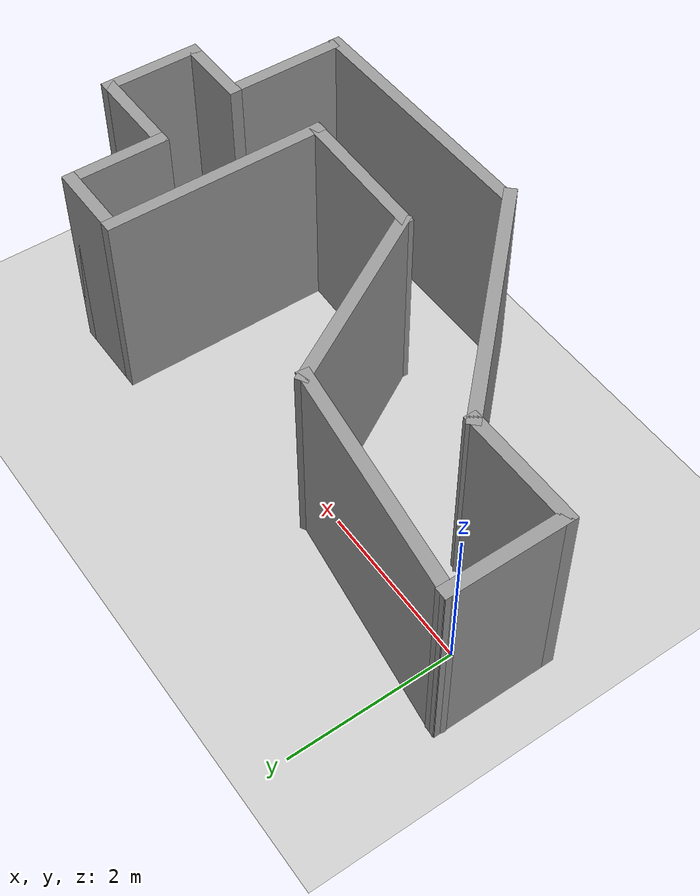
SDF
<sdf version="1.6">
 <world name="default">
  <light name="sun" type="directional">
   <pose>0 0 10 0 -0 0</pose>
   <diffuse>0.8 0.8 0.8 1</diffuse>
   <specular>0.2 0.2 0.2 1</specular>
   <attenuation>
    <range>1000</range>
    <constant>0.9</constant>
    <linear>0.01</linear>
    <quadratic>0.001</quadratic>
   </attenuation>
   <direction>-0.5 0.1 -0.9</direction>
  </light>
  <model name="ground_plane">
   <static>1</static>
   <link name="link">
    <collision name="collision">
     <geometry><plane><normal>0 0 1</normal><size>100 100</size></plane></geometry>
     <surface>
      <contact><collide_bitmask>65535</collide_bitmask></contact>
      <friction><ode><mu>100</mu><mu2>50</mu2></ode></friction>
     </surface>
    </collision>
    <visual name="visual">
     <cast_shadows>0</cast_shadows>
     <geometry><plane><normal>0 0 1</normal><size>100 100</size></plane></geometry>
     <material>
      <script><uri>file://media/materials/scripts/gazebo.material</uri><name>Gazebo/Grey</name></script>
     </material>
    </visual>
   </link>
  </model>
  <gravity>0 0 -9.8</gravity>
  <magnetic_field>6e-06 2.3e-05 -4.2e-05</magnetic_field>
  <atmosphere type="adiabatic"/>
  <physics name="default_physics" default="0" type="ode">
   <max_step_size>0.001</max_step_size>
   <real_time_factor>1</real_time_factor>
   <real_time_update_rate>1000</real_time_update_rate>
  </physics>
  <scene><ambient>0.4 0.4 0.4 1</ambient><background>0.7 0.7 0.7 1</background><shadows>1</shadows></scene>
  <spherical_coordinates>
   <surface_model>EARTH_WGS84</surface_model>
   <latitude_deg>0</latitude_deg>
   <longitude_deg>0</longitude_deg>
   <elevation>0</elevation>
   <heading_deg>0</heading_deg>
  </spherical_coordinates>
  <model name="irregular-3">
   <pose>3.19921 -1.0846 0 0 -0 0</pose>
   <link name="Wall_16">
    <collision name="Wall_16_Collision">
     <geometry><box><size>3.25 0.15 2.5</size></box></geometry>
     <pose>0 0 1.25 0 -0 0</pose>
    </collision>
    <visual name="Wall_16_Visual">
     <pose>0 0 1.25 0 -0 0</pose>
     <geometry><box><size>3.25 0.15 2.5</size></box></geometry>
     <material>
      <script><uri>file://media/materials/scripts/gazebo.material</uri><name>Gazebo/Grey</name></script>
      <ambient>1 1 1 1</ambient>
     </material>
     <meta><layer>0</layer></meta>
    </visual>
    <pose>1.3709 -1.77765 0 0 -0 0</pose>
   </link>
   <link name="Wall_18">
    <collision name="Wall_18_Collision">
     <geometry><box><size>3.25 0.15 2.5</size></box></geometry>
     <pose>0 0 1.25 0 -0 0</pose>
    </collision>
    <visual name="Wall_18_Visual">
     <pose>0 0 1.25 0 -0 0</pose>
     <geometry><box><size>3.25 0.15 2.5</size></box></geometry>
     <material>
      <script><uri>file://media/materials/scripts/gazebo.material</uri><name>Gazebo/Grey</name></script>
      <ambient>1 1 1 1</ambient>
     </material>
     <meta><layer>0</layer></meta>
    </visual>
    <pose>-1.30961 -0.734832 0 0 -0 2.35619</pose>
   </link>
   <link name="Wall_19">
    <collision name="Wall_19_Collision">
     <geometry><box><size>1.5 0.15 2.5</size></box></geometry>
     <pose>0 0 1.25 0 -0 0</pose>
    </collision>
    <visual name="Wall_19_Visual">
     <pose>0 0 1.25 0 -0 0</pose>
     <geometry><box><size>1.5 0.15 2.5</size></box></geometry>
     <material>
      <script><uri>file://media/materials/scripts/gazebo.material</uri><name>Gazebo/Grey</name></script>
      <ambient>1 1 1 1</ambient>
     </material>
     <meta><layer>0</layer></meta>
    </visual>
    <pose>-3.08063 0.361184 0 0 -0 3.14159</pose>
   </link>
   <link name="Wall_20">
    <collision name="Wall_20_Collision">
     <geometry><box><size>1.5 0.15 2.5</size></box></geometry>
     <pose>0 0 1.25 0 -0 0</pose>
    </collision>
    <visual name="Wall_20_Visual">
     <pose>0 0 1.25 0 -0 0</pose>
     <geometry><box><size>1.5 0.15 2.5</size></box></geometry>
     <material>
      <script><uri>file://media/materials/scripts/gazebo.material</uri><name>Gazebo/Grey</name></script>
      <ambient>1 1 1 1</ambient>
     </material>
     <meta><layer>0</layer></meta>
    </visual>
    <pose>-3.75563 1.03618 0 0 -0 1.5708</pose>
   </link>
   <link name="Wall_21">
    <collision name="Wall_21_Collision">
     <geometry><box><size>2.87744 0.15 2.5</size></box></geometry>
     <pose>0 0 1.25 0 -0 0</pose>
    </collision>
    <visual name="Wall_21_Visual">
     <pose>0 0 1.25 0 -0 0</pose>
     <geometry><box><size>2.87744 0.15 2.5</size></box></geometry>
     <material>
      <script><uri>file://media/materials/scripts/gazebo.material</uri><name>Gazebo/Grey</name></script>
      <ambient>1 1 1 1</ambient>
     </material>
     <meta><layer>0</layer></meta>
    </visual>
    <pose>-2.40378 1.53163 0 0 0 -0.132046</pose>
   </link>
   <link name="Wall_22">
    <collision name="Wall_22_Collision">
     <geometry><box><size>2.5 0.15 2.5</size></box></geometry>
     <pose>0 0 1.25 0 -0 0</pose>
    </collision>
    <visual name="Wall_22_Visual">
     <pose>0 0 1.25 0 -0 0</pose>
     <geometry><box><size>2.5 0.15 2.5</size></box></geometry>
     <material>
      <script><uri>file://media/materials/scripts/gazebo.material</uri><name>Gazebo/Grey</name></script>
      <ambient>1 1 1 1</ambient>
     </material>
     <meta><layer>0</layer></meta>
    </visual>
    <pose>-0.464431 0.347801 0 0 0 -1.0472</pose>
   </link>
   <link name="Wall_23">
    <collision name="Wall_23_Collision">
     <geometry><box><size>1.84268 0.15 2.5</size></box></geometry>
     <pose>0 0 1.25 0 -0 0</pose>
    </collision>
    <visual name="Wall_23_Visual">
     <pose>0 0 1.25 0 -0 0</pose>
     <geometry><box><size>1.84268 0.15 2.5</size></box></geometry>
     <material>
      <script><uri>file://media/materials/scripts/gazebo.material</uri><name>Gazebo/Grey</name></script>
      <ambient>1 1 1 1</ambient>
     </material>
     <meta><layer>0</layer></meta>
    </visual>
    <pose>0.968961 -0.710583 0 0 0 -0.032503</pose>
   </link>
   <link name="Wall_24">
    <collision name="Wall_24_Collision">
     <geometry><box><size>2.75 0.15 2.5</size></box></geometry>
     <pose>0 0 1.25 0 -0 0</pose>
    </collision>
    <visual name="Wall_24_Visual">
     <pose>0 0 1.25 0 -0 0</pose>
     <geometry><box><size>2.75 0.15 2.5</size></box></geometry>
     <material>
      <script><uri>file://media/materials/scripts/gazebo.material</uri><name>Gazebo/Grey</name></script>
      <ambient>1 1 1 1</ambient>
     </material>
     <meta><layer>0</layer></meta>
    </visual>
    <pose>1.81485 0.561914 0 0 -0 1.5708</pose>
   </link>
   <link name="Wall_25">
    <collision name="Wall_25_Collision">
     <geometry><box><size>1 0.15 2.5</size></box></geometry>
     <pose>0 0 1.25 0 -0 0</pose>
    </collision>
    <visual name="Wall_25_Visual">
     <pose>0 0 1.25 0 -0 0</pose>
     <geometry><box><size>1 0.15 2.5</size></box></geometry>
     <material>
      <script><uri>file://media/materials/scripts/gazebo.material</uri><name>Gazebo/Grey</name></script>
      <ambient>1 1 1 1</ambient>
     </material>
     <meta><layer>0</layer></meta>
    </visual>
    <pose>2.23985 1.86191 0 0 -0 0</pose>
   </link>
   <link name="Wall_26">
    <collision name="Wall_26_Collision">
     <geometry><box><size>1.25 0.15 2.5</size></box></geometry>
     <pose>0 0 1.25 0 -0 0</pose>
    </collision>
    <visual name="Wall_26_Visual">
     <pose>0 0 1.25 0 -0 0</pose>
     <geometry><box><size>1.25 0.15 2.5</size></box></geometry>
     <material>
      <script><uri>file://media/materials/scripts/gazebo.material</uri><name>Gazebo/Grey</name></script>
      <ambient>1 1 1 1</ambient>
     </material>
     <meta><layer>0</layer></meta>
    </visual>
    <pose>2.66485 1.31191 0 0 0 -1.5708</pose>
   </link>
   <link name="Wall_27">
    <collision name="Wall_27_Collision">
     <geometry><box><size>1.25 0.15 2.5</size></box></geometry>
     <pose>0 0 1.25 0 -0 0</pose>
    </collision>
    <visual name="Wall_27_Visual">
     <pose>0 0 1.25 0 -0 0</pose>
     <geometry><box><size>1.25 0.15 2.5</size></box></geometry>
     <material>
      <script><uri>file://media/materials/scripts/gazebo.material</uri><name>Gazebo/Grey</name></script>
      <ambient>1 1 1 1</ambient>
     </material>
     <meta><layer>0</layer></meta>
    </visual>
    <pose>3.21485 0.761913 0 0 -0 0</pose>
   </link>
   <link name="Wall_28">
    <collision name="Wall_28_Collision">
     <geometry><box><size>1.25 0.15 2.5</size></box></geometry>
     <pose>0 0 1.25 0 -0 0</pose>
    </collision>
    <visual name="Wall_28_Visual">
     <pose>0 0 1.25 0 -0 0</pose>
     <geometry><box><size>1.25 0.15 2.5</size></box></geometry>
     <material>
      <script><uri>file://media/materials/scripts/gazebo.material</uri><name>Gazebo/Grey</name></script>
      <ambient>1 1 1 1</ambient>
     </material>
     <meta><layer>0</layer></meta>
    </visual>
    <pose>3.76485 0.211914 0 0 0 -1.5708</pose>
   </link>
   <link name="Wall_29">
    <collision name="Wall_29_Collision">
     <geometry><box><size>1 0.15 2.5</size></box></geometry>
     <pose>0 0 1.25 0 -0 0</pose>
    </collision>
    <visual name="Wall_29_Visual">
     <pose>0 0 1.25 0 -0 0</pose>
     <geometry><box><size>1 0.15 2.5</size></box></geometry>
     <material>
      <script><uri>file://media/materials/scripts/gazebo.material</uri><name>Gazebo/Grey</name></script>
      <ambient>1 1 1 1</ambient>
     </material>
     <meta><layer>0</layer></meta>
    </visual>
    <pose>3.33985 -0.338086 0 0 -0 3.14159</pose>
   </link>
   <link name="Wall_30">
    <collision name="Wall_30_Collision">
     <geometry><box><size>1.5 0.15 2.5</size></box></geometry>
     <pose>0 0 1.25 0 -0 0</pose>
    </collision>
    <visual name="Wall_30_Visual">
     <pose>0 0 1.25 0 -0 0</pose>
     <geometry><box><size>1.5 0.15 2.5</size></box></geometry>
     <material>
      <script><uri>file://media/materials/scripts/gazebo.material</uri><name>Gazebo/Grey</name></script>
      <ambient>1 1 1 1</ambient>
     </material>
     <meta><layer>0</layer></meta>
    </visual>
    <pose>2.91485 -1.01309 0 0 0 -1.5708</pose>
   </link>
   <static>1</static>
  </model>
 </world>
</sdf>
